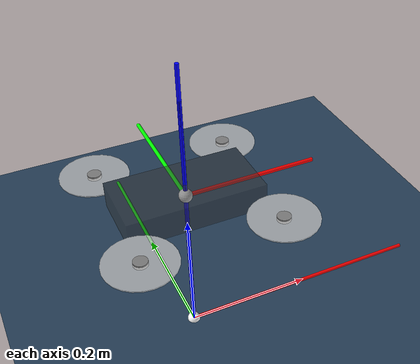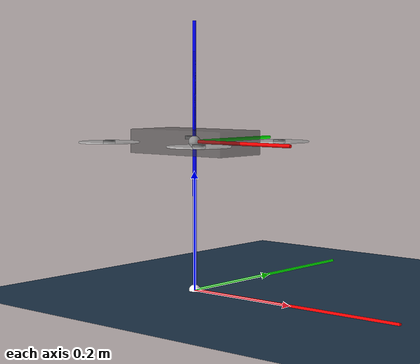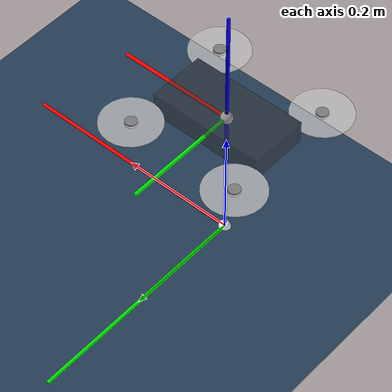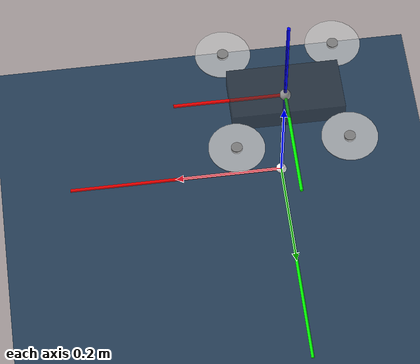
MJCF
<mujoco model="quadcopter">
  <option gravity="0 0 -9.81" timestep="0.002"/>

  <asset>
    <texture type="2d" name="groundplane" builtin="checker" mark="edge" rgb1="0.2 0.3 0.4" rgb2="0.1 0.2 0.3" markrgb="0.8 0.8 0.8" width="300" height="300"/>
    <material name="groundplane" texture="groundplane" texuniform="true" texrepeat="5 5" reflectance="0.2"/>

    <texture name="prop_tex" type="2d" builtin="checker" width="64" height="64" rgb1="0.8 0.8 0.8" rgb2="0 0 0"/>
    <material name="prop_mat" texture="prop_tex" texrepeat="1 1" texuniform="true"/>
  </asset>

  <visual>
    <headlight diffuse="0.6 0.6 0.6" ambient="0.3 0.3 0.3" specular="0 0 0"/>
    <rgba haze="0.15 0.25 0.35 1"/>
    <global azimuth="-20" elevation="-20" ellipsoidinertia="true"/>
  </visual>

  <worldbody>
    <light pos="0 0 1.5" dir="0 0 -1" directional="true"/>

    <geom name="floor" size="0 0 0.05" type="plane" material="groundplane"/>

    <body name="world_frame" pos="0 0 0">
      <geom type="sphere" size="0.01" rgba="1 1 1 1" contype="0" conaffinity="0"/>
      <geom type="cylinder" fromto="0 0 0 0.4 0 0" size="0.003" rgba="1 0 0 1" contype="0" conaffinity="0"/>
      <geom type="cylinder" fromto="0 0 0 0 0.4 0" size="0.003" rgba="0 1 0 1" contype="0" conaffinity="0"/>
      <geom type="cylinder" fromto="0 0 0 0 0 0.4" size="0.003" rgba="0 0 1 1" contype="0" conaffinity="0"/>
    </body>

    <body name="base" pos="0 0 0.25">
      <freejoint/>

      <geom name="chassis" type="box" size=".1 .05 .02" rgba="0.2 0.2 0.2 0.5" mass="0.25"/>

      <site name="body_frame" pos="0 0 0"/>
      <geom type="sphere" size="0.01" rgba="1 1 1 1" contype="0" conaffinity="0"/>
      <geom type="cylinder" fromto="0 0 0 0.2 0 0" size="0.003" rgba="1 0 0 1" contype="0" conaffinity="0"/>
      <geom type="cylinder" fromto="0 0 0 0 0.2 0" size="0.003" rgba="0 1 0 1" contype="0" conaffinity="0"/>
      <geom type="cylinder" fromto="0 0 0 0 0 0.2" size="0.003" rgba="0 0 1 1" contype="0" conaffinity="0"/>

      <body name="rotor_rr" pos="-0.1 -0.1 0">
        <inertial pos="0 0 0" mass="0.05" diaginertia="5e-6 5e-6 9e-6"/>
        <geom type="cylinder" size=".05 .001" rgba="0.8 0.8 0.8 0.8" material="prop_mat"/>
        <site name="motor_rr" type="cylinder" size="0.01 0.003" pos="0 0 0"/>
      </body>

      <body name="rotor_fr" pos="0.1 -0.1 0">
        <inertial pos="0 0 0" mass="0.05" diaginertia="5e-6 5e-6 9e-6"/>
        <geom type="cylinder" size=".05 .001" rgba="0.8 0.8 0.8 0.8" material="prop_mat"/>
        <site name="motor_fr" type="cylinder" size="0.01 0.003" pos="0 0 0"/>
      </body>

      <body name="rotor_rl" pos="-0.1 0.1 0">
        <inertial pos="0 0 0" mass="0.05" diaginertia="5e-6 5e-6 9e-6"/>
        <geom type="cylinder" size=".05 .001" rgba="0.8 0.8 0.8 0.8" material="prop_mat"/>
        <site name="motor_rl" type="cylinder" size="0.01 0.003" pos="0 0 0"/>
      </body>

      <body name="rotor_fl" pos="0.1 0.1 0">
        <inertial pos="0 0 0" mass="0.05" diaginertia="5e-6 5e-6 9e-6"/>
        <geom type="cylinder" size=".05 .001" rgba="0.8 0.8 0.8 0.8" material="prop_mat"/>
        <site name="motor_fl" type="cylinder" size="0.01 0.003" pos="0 0 0"/>
      </body>

    </body>

  </worldbody>

  <actuator>
    <motor name="motor_rr" site="motor_rr" gear="0 0 1 0 0 0.02" ctrllimited="true" ctrlrange="-1000 1000"/>
    <motor name="motor_fr" site="motor_fr" gear="0 0 1 0 0 -0.02" ctrllimited="true" ctrlrange="-1000 1000"/>
    <motor name="motor_rl" site="motor_rl" gear="0 0 1 0 0 -0.02" ctrllimited="true" ctrlrange="-1000 1000"/>
    <motor name="motor_fl" site="motor_fl" gear="0 0 1 0 0 0.02" ctrllimited="true" ctrlrange="-1000 1000"/>
  </actuator>

  <sensor>
    <accelerometer name="accel" site="body_frame" noise="0.005" cutoff="100"/>
    <gyro name="gyro" site="body_frame" noise="0.005" cutoff="100"/>
    <framequat name="quat" objtype="site" objname="body_frame"/>
  </sensor>

</mujoco>
